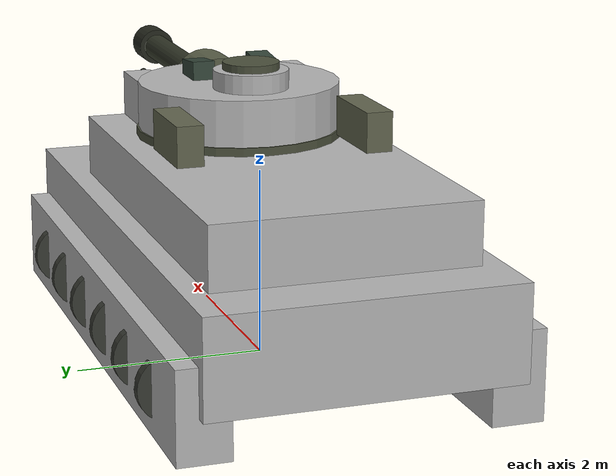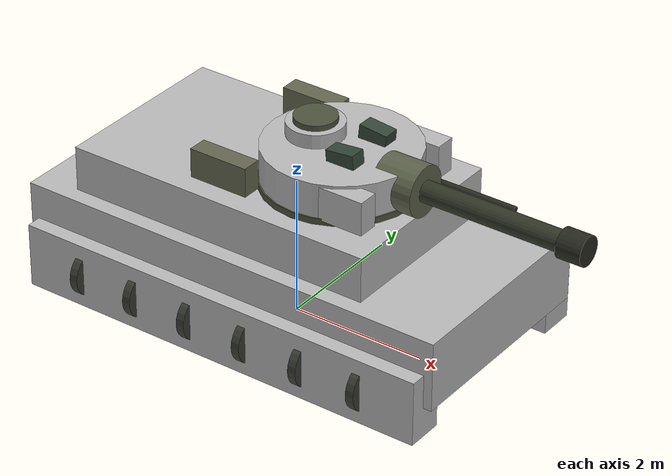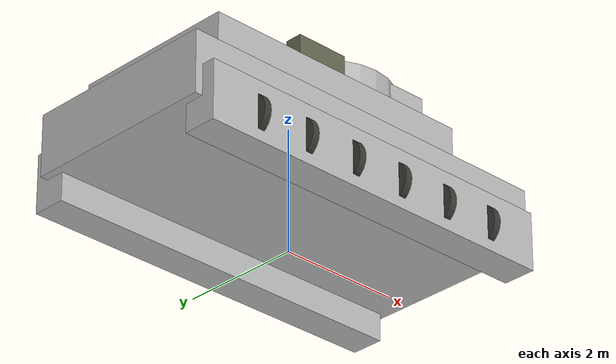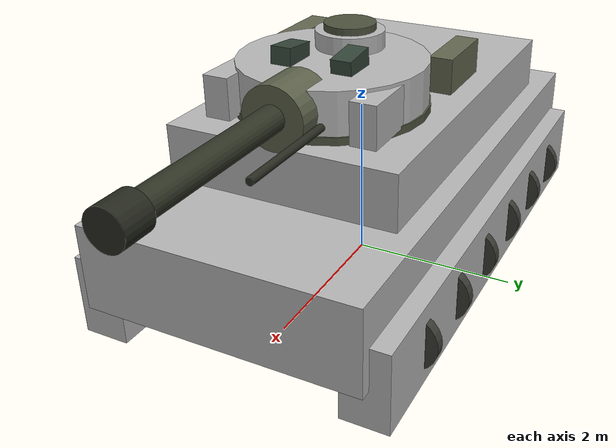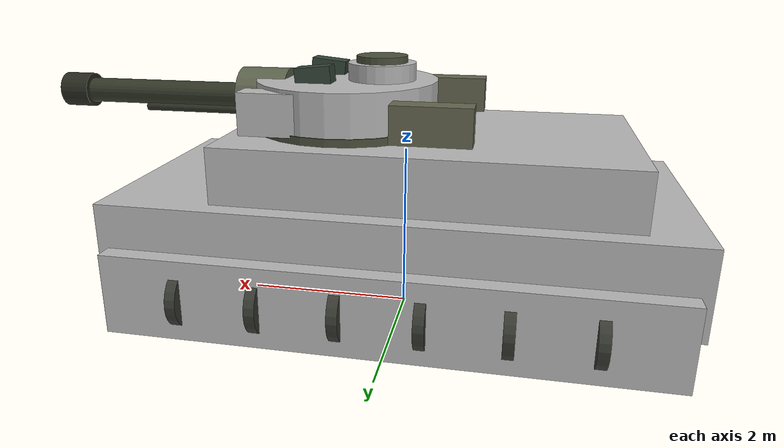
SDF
<?xml version="1.0"?>
<sdf version="1.6">
  <model name="tracking_armored_decoy">
    <static>false</static>
    <allow_auto_disable>false</allow_auto_disable>
    <link name="base_link">
      <gravity>false</gravity>
      <self_collide>false</self_collide>
      <kinematic>false</kinematic>
      <inertial>
        <mass>2300.0</mass>
        <inertia><ixx>1400</ixx><iyy>2100</iyy><izz>2500</izz></inertia>
      </inertial>

      <!-- Use the same known-good materials and dimensions as the two tanks. -->
      <visual name="left_track">
        <pose>0 1.55 0.62 0 0 0</pose>
        <geometry><box><size>6.25 0.54 0.94</size></box></geometry>
        <material><script><uri>model://tracking_tank/materials/scripts</uri><uri>model://tracking_tank/materials/textures</uri><name>XdUavTrack/TrackRubber</name></script></material>
      </visual>
      <visual name="right_track">
        <pose>0 -1.55 0.62 0 0 0</pose>
        <geometry><box><size>6.25 0.54 0.94</size></box></geometry>
        <material><script><uri>model://tracking_tank/materials/scripts</uri><uri>model://tracking_tank/materials/textures</uri><name>XdUavTrack/TrackRubber</name></script></material>
      </visual>

      <visual name="road_wheel_left_1"><pose>-2.25 1.62 0.60 0 1.57079632679 0</pose><geometry><cylinder><radius>0.34</radius><length>0.12</length></cylinder></geometry><material><ambient>0.13 0.14 0.12 1</ambient><diffuse>0.22 0.23 0.20 1</diffuse></material></visual>
      <visual name="road_wheel_left_2"><pose>-1.35 1.62 0.60 0 1.57079632679 0</pose><geometry><cylinder><radius>0.34</radius><length>0.12</length></cylinder></geometry><material><ambient>0.13 0.14 0.12 1</ambient><diffuse>0.22 0.23 0.20 1</diffuse></material></visual>
      <visual name="road_wheel_left_3"><pose>-0.45 1.62 0.60 0 1.57079632679 0</pose><geometry><cylinder><radius>0.34</radius><length>0.12</length></cylinder></geometry><material><ambient>0.13 0.14 0.12 1</ambient><diffuse>0.22 0.23 0.20 1</diffuse></material></visual>
      <visual name="road_wheel_left_4"><pose>0.45 1.62 0.60 0 1.57079632679 0</pose><geometry><cylinder><radius>0.34</radius><length>0.12</length></cylinder></geometry><material><ambient>0.13 0.14 0.12 1</ambient><diffuse>0.22 0.23 0.20 1</diffuse></material></visual>
      <visual name="road_wheel_left_5"><pose>1.35 1.62 0.60 0 1.57079632679 0</pose><geometry><cylinder><radius>0.34</radius><length>0.12</length></cylinder></geometry><material><ambient>0.13 0.14 0.12 1</ambient><diffuse>0.22 0.23 0.20 1</diffuse></material></visual>
      <visual name="road_wheel_left_6"><pose>2.25 1.62 0.60 0 1.57079632679 0</pose><geometry><cylinder><radius>0.34</radius><length>0.12</length></cylinder></geometry><material><ambient>0.13 0.14 0.12 1</ambient><diffuse>0.22 0.23 0.20 1</diffuse></material></visual>
      <visual name="road_wheel_right_1"><pose>-2.25 -1.62 0.60 0 1.57079632679 0</pose><geometry><cylinder><radius>0.34</radius><length>0.12</length></cylinder></geometry><material><ambient>0.13 0.14 0.12 1</ambient><diffuse>0.22 0.23 0.20 1</diffuse></material></visual>
      <visual name="road_wheel_right_2"><pose>-1.35 -1.62 0.60 0 1.57079632679 0</pose><geometry><cylinder><radius>0.34</radius><length>0.12</length></cylinder></geometry><material><ambient>0.13 0.14 0.12 1</ambient><diffuse>0.22 0.23 0.20 1</diffuse></material></visual>
      <visual name="road_wheel_right_3"><pose>-0.45 -1.62 0.60 0 1.57079632679 0</pose><geometry><cylinder><radius>0.34</radius><length>0.12</length></cylinder></geometry><material><ambient>0.13 0.14 0.12 1</ambient><diffuse>0.22 0.23 0.20 1</diffuse></material></visual>
      <visual name="road_wheel_right_4"><pose>0.45 -1.62 0.60 0 1.57079632679 0</pose><geometry><cylinder><radius>0.34</radius><length>0.12</length></cylinder></geometry><material><ambient>0.13 0.14 0.12 1</ambient><diffuse>0.22 0.23 0.20 1</diffuse></material></visual>
      <visual name="road_wheel_right_5"><pose>1.35 -1.62 0.60 0 1.57079632679 0</pose><geometry><cylinder><radius>0.34</radius><length>0.12</length></cylinder></geometry><material><ambient>0.13 0.14 0.12 1</ambient><diffuse>0.22 0.23 0.20 1</diffuse></material></visual>
      <visual name="road_wheel_right_6"><pose>2.25 -1.62 0.60 0 1.57079632679 0</pose><geometry><cylinder><radius>0.34</radius><length>0.12</length></cylinder></geometry><material><ambient>0.13 0.14 0.12 1</ambient><diffuse>0.22 0.23 0.20 1</diffuse></material></visual>

      <visual name="hull">
        <pose>0 0 1.10 0 0 0</pose>
        <geometry><box><size>6.50 3.20 1.00</size></box></geometry>
        <material><script><uri>model://tracking_tank/materials/scripts</uri><uri>model://tracking_tank/materials/textures</uri><name>XdUavTrack/BenchmarkCamo</name></script></material>
      </visual>
      <visual name="superstructure">
        <pose>-0.32 0 1.88 0 0 0</pose>
        <geometry><box><size>4.62 2.72 0.74</size></box></geometry>
        <material><script><uri>model://tracking_tank/materials/scripts</uri><uri>model://tracking_tank/materials/textures</uri><name>XdUavTrack/BenchmarkCamo</name></script></material>
      </visual>

      <visual name="turret_ring">
        <pose>0.72 0 2.25 0 0 0</pose>
        <geometry><cylinder><radius>1.10</radius><length>0.18</length></cylinder></geometry>
        <material><ambient>0.18 0.20 0.15 1</ambient><diffuse>0.30 0.32 0.24 1</diffuse></material>
      </visual>
      <visual name="turret">
        <pose>0.72 0 2.55 0 0 0</pose>
        <geometry><cylinder><radius>1.08</radius><length>0.56</length></cylinder></geometry>
        <material><script><uri>model://tracking_tank/materials/scripts</uri><uri>model://tracking_tank/materials/textures</uri><name>XdUavTrack/BenchmarkCamo</name></script></material>
      </visual>
      <visual name="turret_left_cheek">
        <pose>1.18 0.86 2.55 0 0 0</pose>
        <geometry><box><size>1.12 0.30 0.48</size></box></geometry>
        <material><script><uri>model://tracking_tank/materials/scripts</uri><uri>model://tracking_tank/materials/textures</uri><name>XdUavTrack/BenchmarkCamo</name></script></material>
      </visual>
      <visual name="turret_right_cheek">
        <pose>1.18 -0.86 2.55 0 0 0</pose>
        <geometry><box><size>1.12 0.30 0.48</size></box></geometry>
        <material><script><uri>model://tracking_tank/materials/scripts</uri><uri>model://tracking_tank/materials/textures</uri><name>XdUavTrack/BenchmarkCamo</name></script></material>
      </visual>
      <visual name="gun_mantlet">
        <pose>1.72 0 2.57 0 1.57079632679 0</pose>
        <geometry><cylinder><radius>0.36</radius><length>0.60</length></cylinder></geometry>
        <material><ambient>0.22 0.24 0.18 1</ambient><diffuse>0.36 0.38 0.29 1</diffuse></material>
      </visual>
      <!-- A deliberately shorter cannon keeps this as a similar but distinct decoy. -->
      <visual name="short_barrel">
        <pose>2.92 0 2.58 0 1.57079632679 0</pose>
        <geometry><cylinder><radius>0.15</radius><length>2.40</length></cylinder></geometry>
        <material><ambient>0.10 0.11 0.08 1</ambient><diffuse>0.19 0.21 0.15 1</diffuse></material>
      </visual>
      <visual name="muzzle_brake">
        <pose>4.25 0 2.58 0 1.57079632679 0</pose>
        <geometry><cylinder><radius>0.21</radius><length>0.36</length></cylinder></geometry>
        <material><ambient>0.08 0.09 0.07 1</ambient><diffuse>0.15 0.16 0.12 1</diffuse></material>
      </visual>
      <visual name="coaxial_barrel">
        <pose>2.45 0.43 2.48 0 1.57079632679 0</pose>
        <geometry><cylinder><radius>0.045</radius><length>1.30</length></cylinder></geometry>
        <material><ambient>0.08 0.09 0.07 1</ambient><diffuse>0.16 0.17 0.13 1</diffuse></material>
      </visual>

      <visual name="commander_cupola">
        <pose>0.30 0 2.92 0 0 0</pose>
        <geometry><cylinder><radius>0.40</radius><length>0.22</length></cylinder></geometry>
        <material><script><uri>model://tracking_tank/materials/scripts</uri><uri>model://tracking_tank/materials/textures</uri><name>XdUavTrack/BenchmarkCamo</name></script></material>
      </visual>
      <visual name="commander_hatch">
        <pose>0.30 0 3.07 0 0 0</pose>
        <geometry><cylinder><radius>0.30</radius><length>0.08</length></cylinder></geometry>
        <material><ambient>0.18 0.20 0.15 1</ambient><diffuse>0.30 0.32 0.24 1</diffuse></material>
      </visual>
      <visual name="sight_left">
        <pose>1.02 0.36 2.91 0 0.10 0</pose>
        <geometry><box><size>0.42 0.24 0.20</size></box></geometry>
        <material><ambient>0.10 0.14 0.12 1</ambient><diffuse>0.20 0.27 0.22 1</diffuse></material>
      </visual>
      <visual name="sight_right">
        <pose>1.02 -0.36 2.91 0 -0.10 0</pose>
        <geometry><box><size>0.42 0.24 0.20</size></box></geometry>
        <material><ambient>0.10 0.14 0.12 1</ambient><diffuse>0.20 0.27 0.22 1</diffuse></material>
      </visual>
      <visual name="turret_stowage_left">
        <pose>-0.42 1.00 2.53 0 0 0</pose>
        <geometry><box><size>0.88 0.28 0.42</size></box></geometry>
        <material><ambient>0.25 0.27 0.20 1</ambient><diffuse>0.39 0.40 0.31 1</diffuse></material>
      </visual>
      <visual name="turret_stowage_right">
        <pose>-0.42 -1.00 2.53 0 0 0</pose>
        <geometry><box><size>0.88 0.28 0.42</size></box></geometry>
        <material><ambient>0.25 0.27 0.20 1</ambient><diffuse>0.39 0.40 0.31 1</diffuse></material>
      </visual>
    </link>
  </model>
</sdf>
